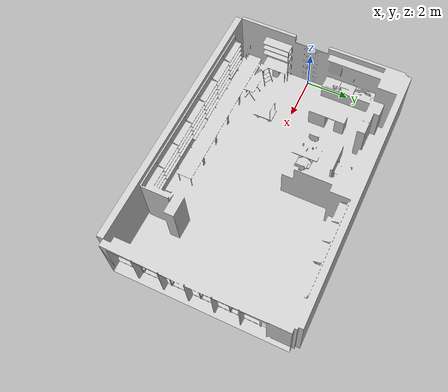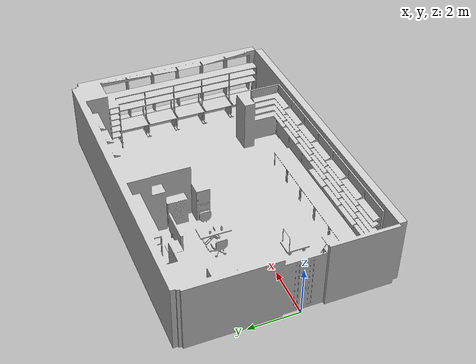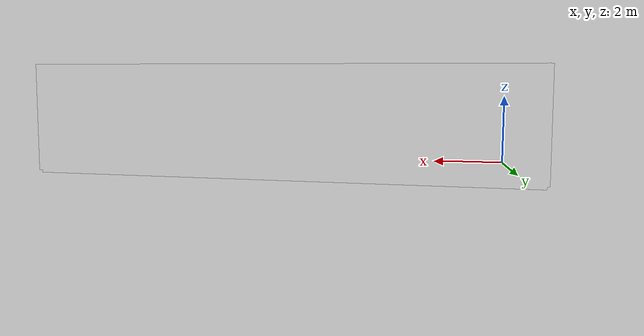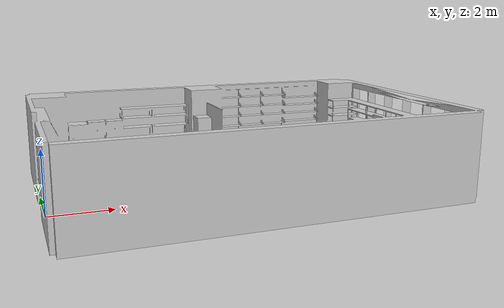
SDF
<?xml version='1.0'?>
<sdf version='1.3'>
  <model name='room73b2'>
    <static>false</static>
    <link name='room73b2'>
      <pose>0 0 0.07 0 0 0</pose>

      <inertial>
        <pose>0 0 0.15 0 0 0</pose>
        <mass>3.0</mass>
        <inertia>
          <ixx>0.0601875</ixx>
          <ixy>0</ixy>
          <ixz>0</ixz>
          <iyy>0.0601875</iyy>
          <iyz>0</iyz>
          <izz>0.120225</izz>
        </inertia>
      </inertial>

      <collision name="default">
        <pose>0 0 0.15 0 0 0</pose>
        <geometry>
          <mesh>
            <uri>model://room73b2/meshes/room73b2.dae</uri>
          </mesh>
        </geometry>
      </collision>

      <visual name="default">
        <pose>0 0 0.15 0 0 0</pose>
        <geometry>
          <mesh>
            <uri>model://room73b2/meshes/room73b2.dae</uri>
          </mesh>
        </geometry>
      </visual>
    </link>

  </model>
</sdf>
